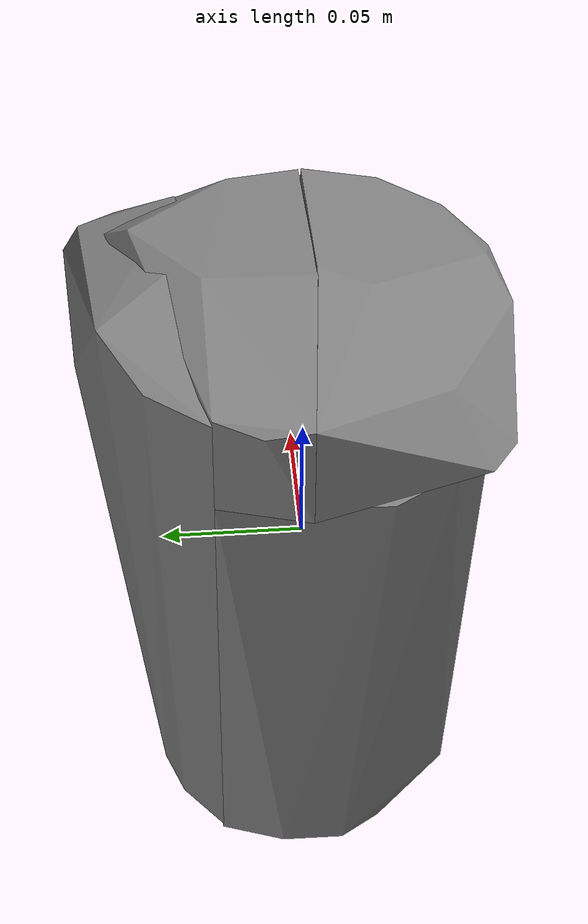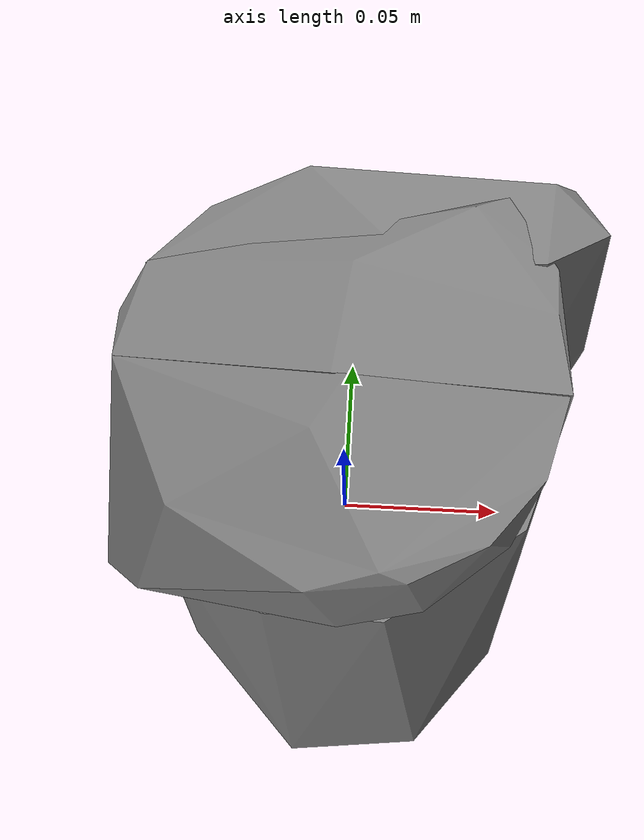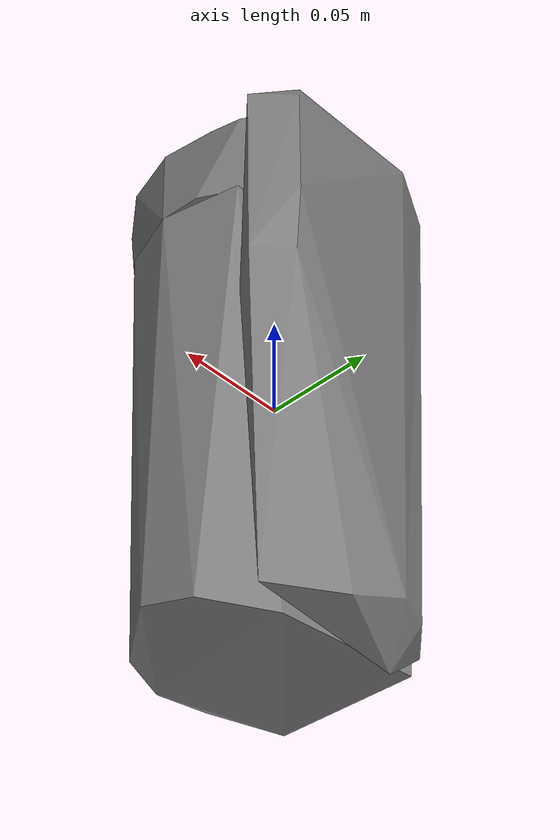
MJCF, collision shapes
<mujoco model="pitcher_base">
  <compiler angle="radian" />

  <asset>
    <mesh name="pitcher_base_visual_mesh" file="pitcher_base/textured.obj" />
    <mesh name="pitcher_base_collision_mesh_0" file="pitcher_base/textured_coacd_0.stl" />
    <mesh name="pitcher_base_collision_mesh_1" file="pitcher_base/textured_coacd_1.stl" />
    <mesh name="pitcher_base_collision_mesh_2" file="pitcher_base/textured_coacd_2.stl" />
    <mesh name="pitcher_base_collision_mesh_3" file="pitcher_base/textured_coacd_3.stl" />
    <texture name="pitcher_base_texture" type="2d" file="pitcher_base/texture_map.png" />
    <material name="pitcher_base_material" texture="pitcher_base_texture" />
  </asset>

  <worldbody>
    <body name="pitcher_base" pos="0 0 0" euler="0 0 0">
      <freejoint name="pitcher_base_joint" />
      <geom name="pitcher_base_visual_geom" type="mesh" mesh="pitcher_base_visual_mesh" material="pitcher_base_material" pos="0.013413446511744047 -0.03347736239251225 -0.12263624751276252" euler="0 0 0" contype="0" conaffinity="0" group="0" />
      <geom name="pitcher_base_collision_geom_0" type="mesh" mesh="pitcher_base_collision_mesh_0" pos="0.013413446511744047 -0.03347736239251225 -0.12263624751276252" euler="0 0 0" contype="1" conaffinity="1" group="3" />
      <geom name="pitcher_base_collision_geom_1" type="mesh" mesh="pitcher_base_collision_mesh_1" pos="0.013413446511744047 -0.03347736239251225 -0.12263624751276252" euler="0 0 0" contype="1" conaffinity="1" group="3" />
      <geom name="pitcher_base_collision_geom_2" type="mesh" mesh="pitcher_base_collision_mesh_2" pos="0.013413446511744047 -0.03347736239251225 -0.12263624751276252" euler="0 0 0" contype="1" conaffinity="1" group="3" />
      <geom name="pitcher_base_collision_geom_3" type="mesh" mesh="pitcher_base_collision_mesh_3" pos="0.013413446511744047 -0.03347736239251225 -0.12263624751276252" euler="0 0 0" contype="1" conaffinity="1" group="3" />
      <inertial pos="0 0 0" euler="0 0 0" mass="0.178" diaginertia="0.001 0.001 0.001" />
    </body>
  </worldbody>
</mujoco>
